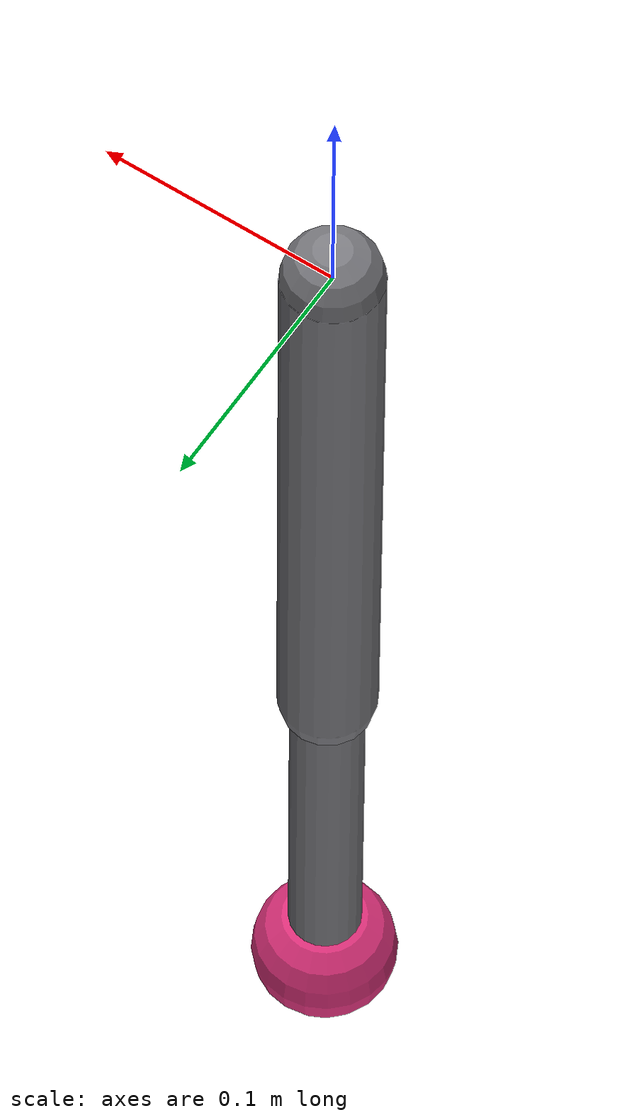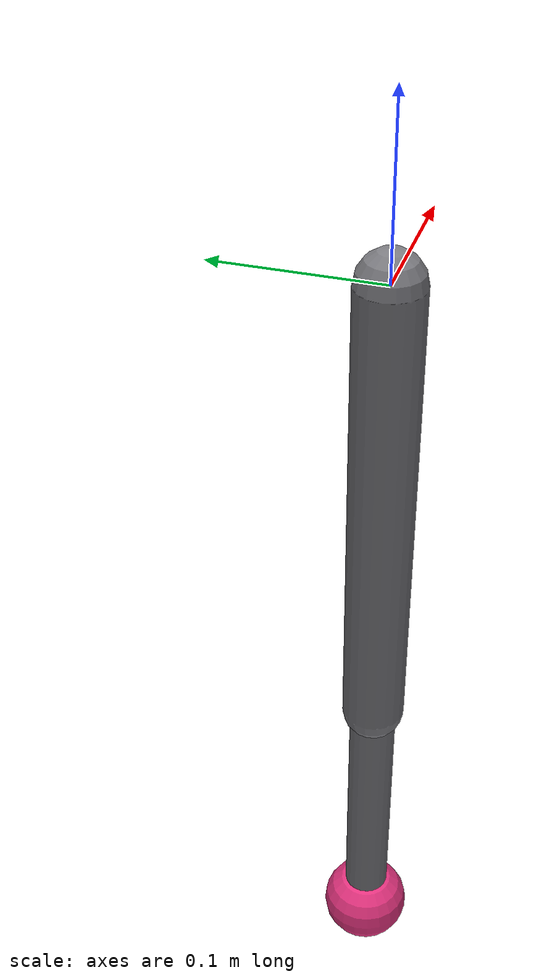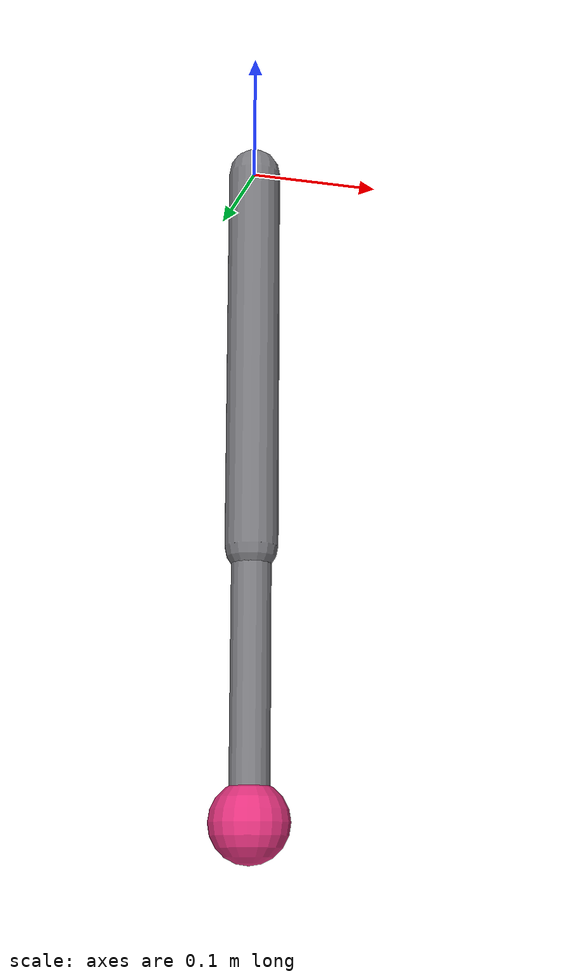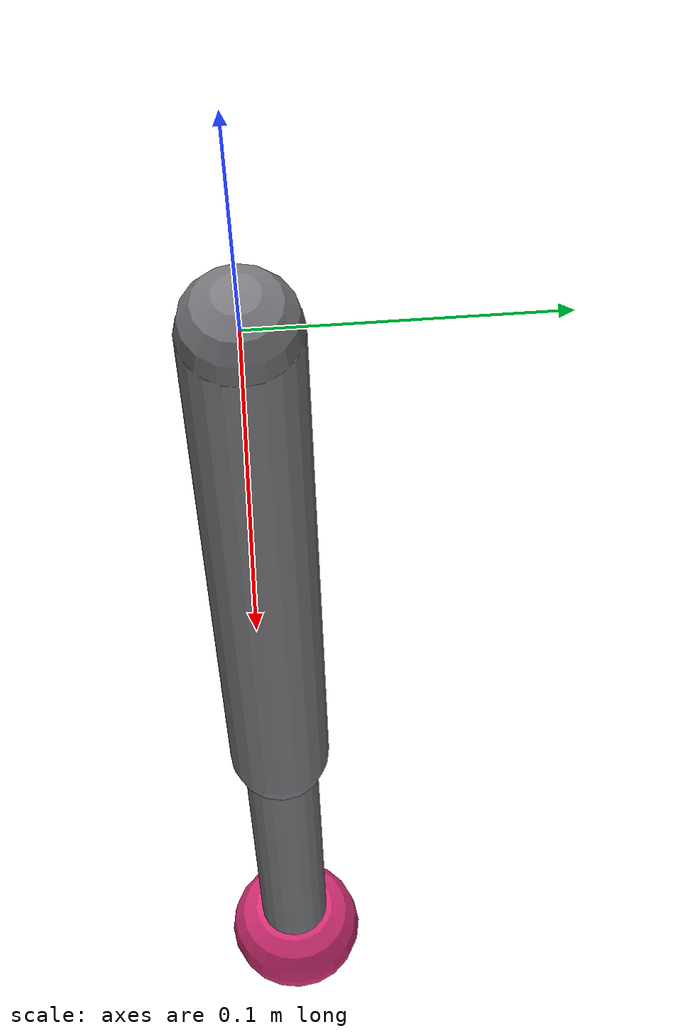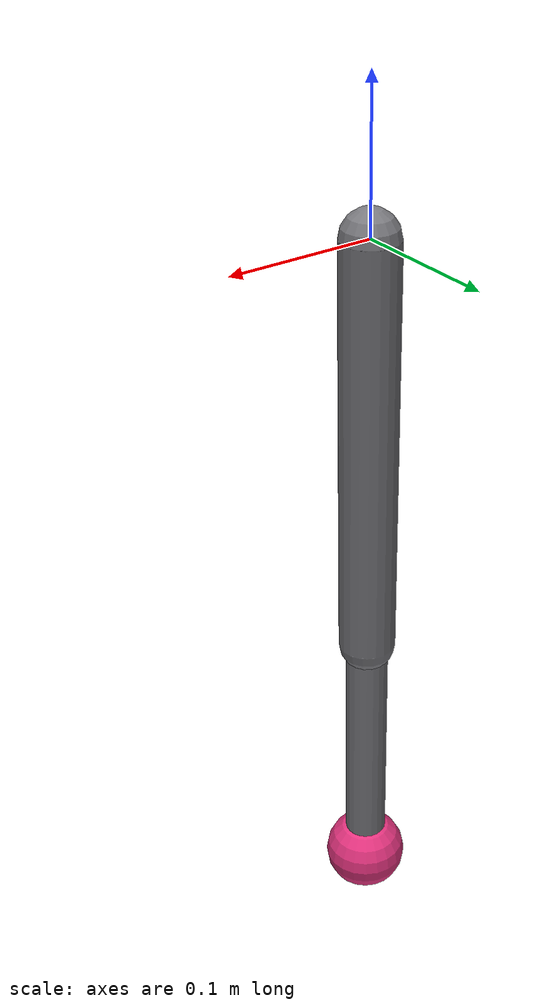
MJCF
<mujoco model="site-transmission">
  <compiler angle="radian"/>
  <option gravity="0 0 0" timestep="0.001" integrator="RK4"/>

  <default>
    <geom contype="0" conaffinity="0"/>
  </default>

  <worldbody>
    <body name="upper_arm" pos="0 0 0">
      <joint name="shoulder" type="hinge" axis="0 1 0"
             stiffness="10" damping="1.5" armature="0.01"/>
      <inertial pos="0 0 -0.15" mass="1.0" diaginertia="0.01 0.01 0.01"/>
      <geom name="upper_rod" type="capsule" size="0.02"
            fromto="0 0 0  0 0 -0.3" rgba="0.48 0.48 0.50 1"/>
      <body name="forearm" pos="0 0 -0.3">
        <joint name="elbow" type="hinge" axis="0 1 0" armature="0.005"/>
        <inertial pos="0 0 -0.1" mass="0.5" diaginertia="0.002 0.002 0.002"/>
        <geom name="lower_rod" type="capsule" size="0.015"
              fromto="0 0 0  0 0 -0.2" rgba="0.48 0.48 0.50 1"/>
        <geom name="hand" type="sphere" size="0.03"
              pos="0 0 -0.2" rgba="0.9 0.2 0.5 1"/>
        <site name="tip_site" pos="0 0 -0.2"/>
      </body>
    </body>
  </worldbody>

  <actuator>
    <position name="elbow_servo" joint="elbow" kp="20" dampratio="1"/>
    <general name="site_force" site="tip_site" gear="1 0 0 0 0 0" gainprm="10"/>
  </actuator>

  <sensor>
    <actuatorfrc name="site_frc" actuator="site_force"/>
    <jointpos name="q_shoulder" joint="shoulder"/>
    <jointpos name="q_elbow" joint="elbow"/>
  </sensor>
</mujoco>
